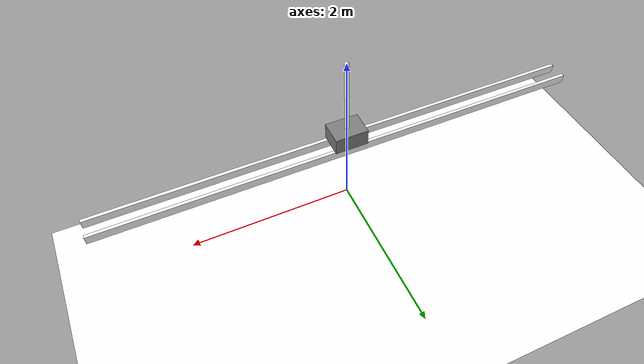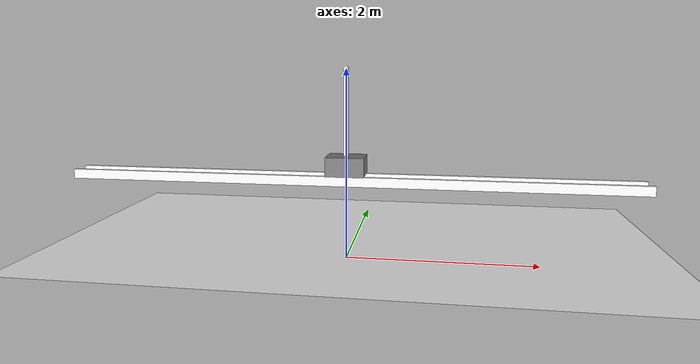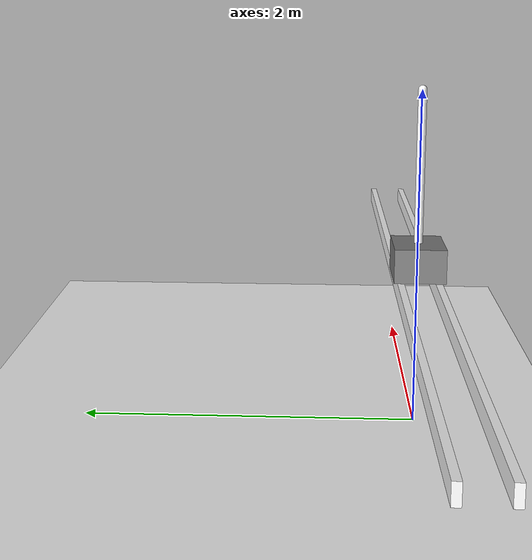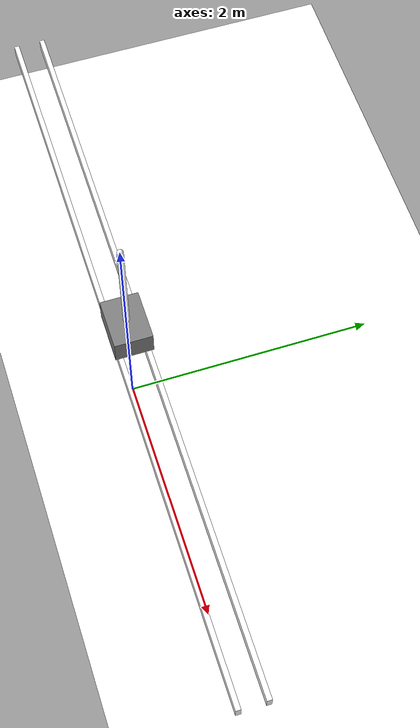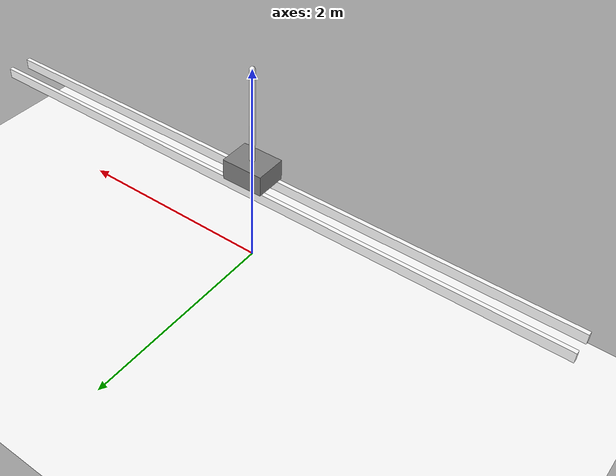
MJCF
<mujoco model="cartpole">
  <option timestep="0.01" integrator="RK4"
          gravity="0 0 -9.81" wind="0 0 0"
          density="1.2" viscosity="0.00002">
    <flag contact="disable" energy="enable"/>
  </option>

  <asset>
      <material name="wood"/>

      <texture name="skybox" type="skybox" builtin="gradient" rgb1=".4 .6 .8" rgb2="0 0 0"
               width="1600" height="1600" mark="random" markrgb="1 1 1"/>

      <material name="floor" />

      <material name="rail" />
  </asset>

  <visual>
    <headlight />
    <rgba />
  </visual>

  <worldbody>
    <camera name="fixed" pos="0 -5 3" zaxis="0 -1 0" />
    <light name="light" pos="0 0 6" />
    <geom name="floor" pos="0 0 -.05" size="3.5 3.5 .2" type="plane" material="floor" />
    <geom name="rail_1" type="box" pos="0  .11 .85" size="3 0.02 0.05" material="rail" />
    <geom name="rail_2" type="box" pos="0 -.11 .85" size="3 0.02 0.05" material="rail" />
    <body name="cart" pos="0 0 1">
      <joint name="slider" type="slide" limited="true" axis="1 0 0" range="-2.4 2.4" solreflimit=".08 1" damping="5e-4" />
      <geom name="cart" type="box" size="0.2 0.15 0.1" mass="1.0" />
      <body name="pole">
        <joint name="hinge" type="hinge" axis="0 1 0"  damping="2e-6" />
        <geom name="pole" type="capsule" fromto="0 0 0 0 0 1" size="0.0254" mass="0.1" material="wood" />
      </body>
    </body>
  </worldbody>
  <sensor>
    <jointpos name="slider" joint="slider" />
    <jointpos name="hinge" joint="hinge" />
  </sensor>
  <actuator>
    <motor name="motor" joint="slider" gear="10" ctrllimited="true" ctrlrange="-1 1" />
  </actuator>
</mujoco>
